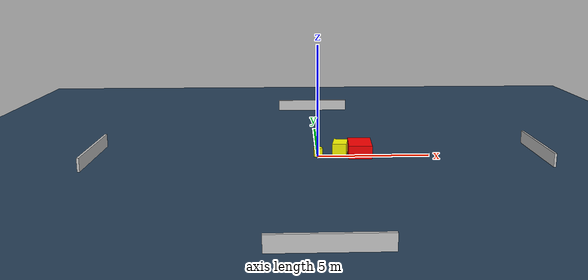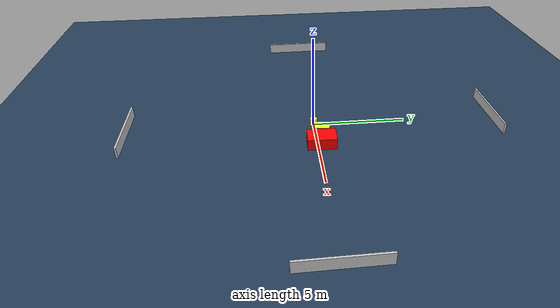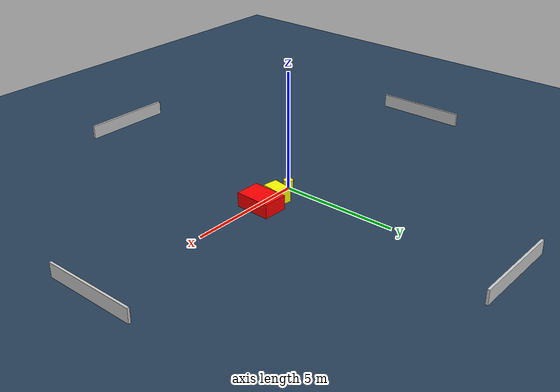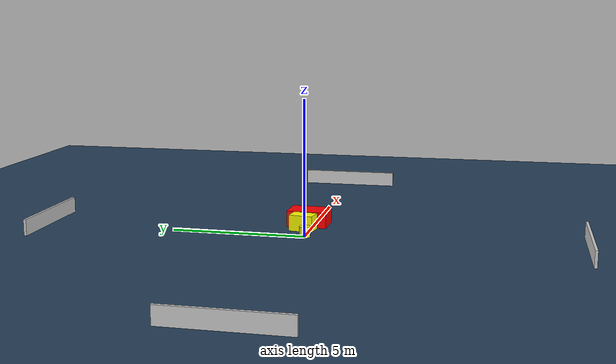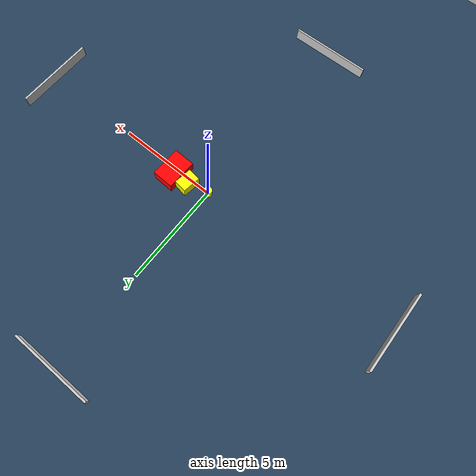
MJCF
<?xml version="1.0" ?>
<mujoco model="generated_environment">
  <option timestep="0.01" integrator="RK4" cone="elliptic"/>
  <default>
    <geom density="1"/>
  </default>
  <asset>
    <texture builtin="gradient" height="3072" name="skybox" rgb1="0.3 0.5 0.7" rgb2="0 0 0" type="skybox" width="512"/>
    <texture builtin="checker" height="300" name="groundplane" rgb1="0.2 0.3 0.4" rgb2="0.1 0.2 0.3" type="2d" width="300"/>
    <material name="groundplane" reflectance="0.2" texrepeat="5 5" texture="groundplane"/>
  </asset>
  <worldbody>
    <light dir="0 0 -1" directional="true" pos="0 0 1.5"/>
    <geom condim="3" friction="0.5 0.005 0.001" material="groundplane" name="floor" pos="0 0 0" size="0 0 0.05" type="plane"/>
    <body name="walls">
      <geom name="wall_1" condim="4" pos="-10.0 0.0 0.3" rgba="0.800000011920929 0.800000011920929 0.800000011920929 1.0" size="0.05 2.0 0.3" type="box"/>
      <geom name="wall_2" condim="4" pos="10.0 0.0 0.3" rgba="0.800000011920929 0.800000011920929 0.800000011920929 1.0" size="0.05 2.0 0.3" type="box"/>
      <geom name="wall_3" condim="4" pos="0.0 -10.0 0.3" rgba="0.800000011920929 0.800000011920929 0.800000011920929 1.0" size="2.0 0.05 0.3" type="box"/>
      <geom name="wall_4" condim="4" pos="0.0 10.0 0.3" rgba="0.800000011920929 0.800000011920929 0.800000011920929 1.0" size="2.0 0.05 0.3" type="box"/>
    </body>
    <body name="robot">
      <joint name="joint_x" type="slide" pos="0 0 0" axis="1 0 0"/>
      <joint name="joint_y" type="slide" pos="0 0 0" axis="0 1 0"/>
      <geom name="robot" type="cylinder" pos="0.0 0.0 0.2" size="0.2 0.2 0.0" mass="5.0" friction="1.0 0.005 0.0001" condim="4" rgba="1.0 1.0 0.0 1.0"/>
    </body>
    <body name="obstacle_1_movable">
      <geom name="obstacle_1_movable" condim="4" pos="1.0075634341722681 0.2787723447551412 0.3" euler="0 0 261.97367150178343" friction="0.0 0.005 0.001" rgba="1.0 1.0 0.0 1.0" size="0.4506681958851331 0.31368691410247496 0.3" type="box" mass="0.1"/>
      <joint type="free"/>
    </body>
    <body name="obstacle_2_static">
      <geom name="obstacle_2_static" condim="4" pos="1.8914265419832854 0.21557863874774244 0.3" euler="0 0 87.87196858719722" friction="0.0 0.005 0.001" rgba="1.0 0.0 0.0 1.0" size="0.7579610691612437 0.5236804190589698 0.3" type="box"/>
    </body>
  </worldbody>
  <actuator>
    <motor name="actuator_x" joint="joint_x" gear="1" ctrlrange="-1 1"/>
    <motor name="actuator_y" joint="joint_y" gear="1" ctrlrange="-1 1"/>
  </actuator>
</mujoco>
